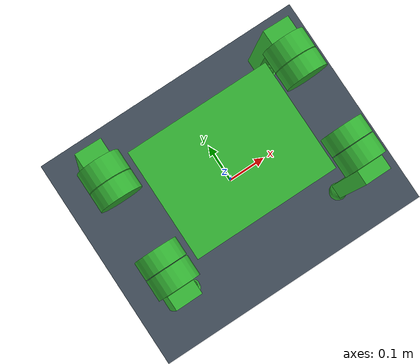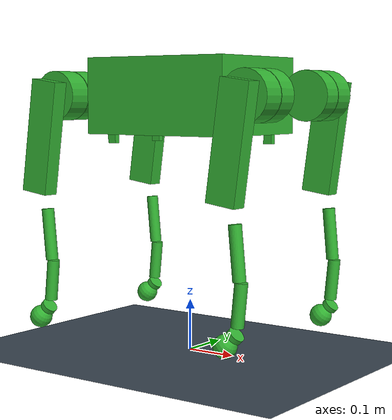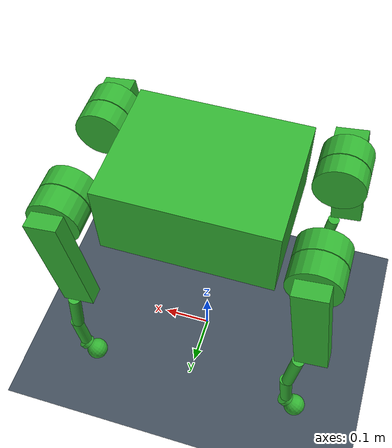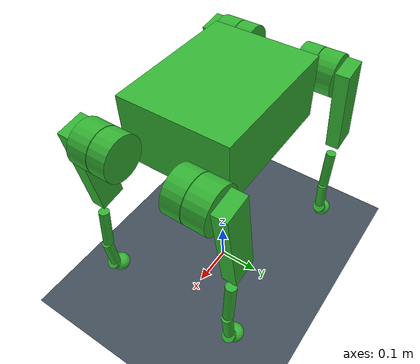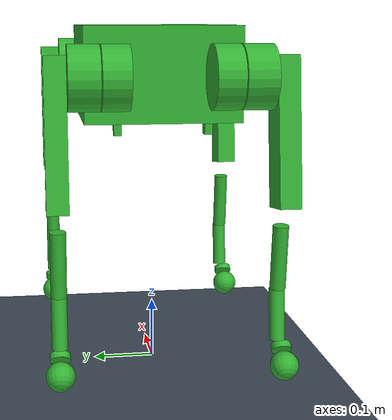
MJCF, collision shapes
<mujoco model="imgo2_amp">
  <!-- Generated by generate_deploy_mjcf.py; training URDF sha256: 9abc6802a05fd59cad41ebbbb47a31208d3a1c5c21dc9d124d7d28d9f4c62a99 -->
  <compiler angle="radian" eulerseq="xyz" autolimits="true" inertiafromgeom="false" />
  <option timestep="0.005" cone="elliptic" impratio="100" gravity="0 0 -9.81" />
  <asset>
    <mesh name="mesh_0" file="../imgo2_urdf/meshes/base.STL" scale="1 1 1" />
    <mesh name="mesh_1" file="../imgo2_urdf/meshes/FL_hip.STL" scale="1 1 1" />
    <mesh name="mesh_2" file="../imgo2_urdf/meshes/L_thigh.STL" scale="1 1 1" />
    <mesh name="mesh_3" file="../imgo2_urdf/meshes/L_shank.STL" scale="1 1 1" />
    <mesh name="mesh_4" file="../imgo2_urdf/meshes/foot.STL" scale="1 1 1" />
    <mesh name="mesh_5" file="../imgo2_urdf/meshes/FR_hip.STL" scale="1 1 1" />
    <mesh name="mesh_6" file="../imgo2_urdf/meshes/R_thigh.STL" scale="1 1 1" />
    <mesh name="mesh_7" file="../imgo2_urdf/meshes/R_shank.STL" scale="1 1 1" />
    <mesh name="mesh_8" file="../imgo2_urdf/meshes/RL_hip.STL" scale="1 1 1" />
    <mesh name="mesh_9" file="../imgo2_urdf/meshes/RR_hip.STL" scale="1 1 1" />
  </asset>
  <worldbody>
    <light pos="0 0 3" dir="0 0 -1" directional="true" />
    <geom name="floor" type="plane" size="0 0 0.1" rgba="0.25 0.3 0.35 1" friction="1 0.005 0.0001" contype="1" conaffinity="2" />
    <body name="base" pos="0 0 0.5">
      <freejoint name="root" />
      <site name="imu" size="0.005" />
      <inertial pos="-0.00002223 -0.00136579 0.00287896" mass="5.53394020" fullinertia="0.03866860 0.10411461 0.12554111 0.00001502 0.00000229 -0.00009602" />
      <geom pos="0 0 0.0" euler="0 0 0" type="mesh" mesh="mesh_0" contype="0" conaffinity="0" group="2" rgba="0.55 0.6 0.65 1" />
      <geom pos="0 0 0" euler="0 0 0" type="box" size="0.1575 0.1215 0.0735" contype="2" conaffinity="1" condim="3" solref="0.005 1" friction="1 0.01 0.01" group="3" rgba="0.2 0.7 0.2 0.3" />
      <geom pos="0.136 0.07 -0.08325" euler="0 0 0" type="box" size="0.009 0.006 0.009" contype="2" conaffinity="1" condim="3" solref="0.005 1" friction="1 0.01 0.01" group="3" rgba="0.2 0.7 0.2 0.3" />
      <geom pos="0.136 -0.07 -0.08325" euler="0 0 0" type="box" size="0.009 0.006 0.009" contype="2" conaffinity="1" condim="3" solref="0.005 1" friction="1 0.01 0.01" group="3" rgba="0.2 0.7 0.2 0.3" />
      <geom pos="-0.136 0.07 -0.08325" euler="0 0 0" type="box" size="0.009 0.006 0.009" contype="2" conaffinity="1" condim="3" solref="0.005 1" friction="1 0.01 0.01" group="3" rgba="0.2 0.7 0.2 0.3" />
      <geom pos="-0.136 -0.07 -0.08325" euler="0 0 0" type="box" size="0.009 0.006 0.009" contype="2" conaffinity="1" condim="3" solref="0.005 1" friction="1 0.01 0.01" group="3" rgba="0.2 0.7 0.2 0.3" />
      <body name="FL_HIP" pos="0.1575 0.067 0.00025" euler="0 0 0">
        <joint name="FL_hip_joint" type="hinge" axis="1 0 0" range="-0.523 0.523" damping="1" armature="0.1" />
        <inertial pos="0.05776150 0.01631658 0.00001927" mass="0.66982842" fullinertia="0.00047165 0.00094023 0.00063679 -0.00002152 -0.00000604 0.00000025" />
        <geom type="mesh" mesh="mesh_1" contype="0" conaffinity="0" group="2" rgba="0.55 0.6 0.65 1" />
        <geom pos="0.063 0.013 0.0" euler="1.5707963267948966 0.0 0.0" type="cylinder" size="0.048 0.0205" contype="2" conaffinity="1" condim="3" solref="0.005 1" friction="1 0.01 0.01" group="3" rgba="0.2 0.7 0.2 0.3" />
        <body name="FL_THIGH" pos="0.063 0.0346 0" euler="0 0 0">
          <joint name="FL_thigh_joint" type="hinge" axis="0 1 0" range="-0.9 2.87" damping="1" armature="0.1" />
          <inertial pos="-0.00429543 0.04392351 -0.03236426" mass="0.96995719" fullinertia="0.00506421 0.00527087 0.00088197 0.00008162 -0.00034748 0.00062882" />
          <geom type="mesh" mesh="mesh_2" contype="0" conaffinity="0" group="2" rgba="0.55 0.6 0.65 1" />
          <geom pos="0.0 0.0235 0.0" euler="1.5707963267948966 0.0 0.0" type="cylinder" size="0.048 0.023" contype="2" conaffinity="1" condim="3" solref="0.005 1" friction="1 0.01 0.01" group="3" rgba="0.2 0.7 0.2 0.3" />
          <geom pos="-0.012 0.0637 -0.08" euler="0.0 0.137 0.0" type="box" size="0.03 0.016 0.11" contype="2" conaffinity="1" condim="3" solref="0.005 1" friction="1 0.01 0.01" group="3" rgba="0.2 0.7 0.2 0.3" />
          <body name="FL_SHANK" pos="0 0.0557 -0.22" euler="0 0 0">
            <joint name="FL_shank_joint" type="hinge" axis="0 1 0" range="-3.0 -0.733" damping="1" armature="0.1" />
            <inertial pos="0.00291507 0.00773582 -0.08768836" mass="0.09561741" fullinertia="0.00054414 0.00055144 0.00001064 0.00000025 0.00000058 0.00000263" />
            <geom type="mesh" mesh="mesh_3" contype="0" conaffinity="0" group="2" rgba="0.55 0.6 0.65 1" />
            <geom pos="0.0 0.008 -0.05" euler="0.0 -0.1 0.0" type="cylinder" size="0.012 0.05" contype="2" conaffinity="1" condim="3" solref="0.005 1" friction="1 0.01 0.01" group="3" rgba="0.2 0.7 0.2 0.3" />
            <geom pos="0.005 0.008 -0.14" euler="0.0 0.1 0.0" type="cylinder" size="0.012 0.04" contype="2" conaffinity="1" condim="3" solref="0.005 1" friction="1 0.01 0.01" group="3" rgba="0.2 0.7 0.2 0.3" />
            <body name="FL_FOOT" pos="0.0 0.00455 -0.206" euler="0.0 0.777 0.0">
              <inertial pos="-0.00797137 0.00353495 -0.02130484" mass="0.056" fullinertia="9.6e-06 9.6e-06 9.6e-06 0 0 0" />
              <geom type="mesh" mesh="mesh_4" contype="0" conaffinity="0" group="2" rgba="0.55 0.6 0.65 1" />
              <geom pos="-0.008 0.0035 0.01" euler="0.0 0.0 0.0" type="cylinder" size="0.0155 0.005" contype="2" conaffinity="1" condim="3" solref="0.005 1" friction="0.4 0.02 0.01" group="3" rgba="0.2 0.7 0.2 0.3" />
              <geom pos="-0.008 0.0035 -0.02" euler="0.0 0.0 0.0" type="sphere" size="0.022" contype="2" conaffinity="1" condim="3" solref="0.005 1" friction="0.4 0.02 0.01" group="3" rgba="0.2 0.7 0.2 0.3" />
            </body>
          </body>
        </body>
      </body>
      <body name="FR_HIP" pos="0.1575 -0.067 0.00025" euler="0 0 0">
        <joint name="FR_hip_joint" type="hinge" axis="1 0 0" range="-0.523 0.523" damping="1" armature="0.1" />
        <inertial pos="0.05776150 -0.01631658 0.00001927" mass="0.66982842" fullinertia="0.00047165 0.00094023 0.00063679 0.00002152 -0.00000604 -0.00000025" />
        <geom type="mesh" mesh="mesh_5" contype="0" conaffinity="0" group="2" rgba="0.55 0.6 0.65 1" />
        <geom pos="0.063 -0.013 0.0" euler="1.5707963267948966 0.0 0.0" type="cylinder" size="0.048 0.0205" contype="2" conaffinity="1" condim="3" solref="0.005 1" friction="1 0.01 0.01" group="3" rgba="0.2 0.7 0.2 0.3" />
        <body name="FR_THIGH" pos="0.063 -0.0346 0" euler="0 0 0">
          <joint name="FR_thigh_joint" type="hinge" axis="0 1 0" range="-0.9 2.87" damping="1" armature="0.1" />
          <inertial pos="-0.00429543 -0.04392351 -0.03236426" mass="0.96995719" fullinertia="0.00506421 0.00527087 0.00088197 -0.00008162 -0.00034748 -0.00062882" />
          <geom type="mesh" mesh="mesh_6" contype="0" conaffinity="0" group="2" rgba="0.55 0.6 0.65 1" />
          <geom pos="0.0 -0.0235 0.0" euler="1.5707963267948966 0.0 0.0" type="cylinder" size="0.048 0.023" contype="2" conaffinity="1" condim="3" solref="0.005 1" friction="1 0.01 0.01" group="3" rgba="0.2 0.7 0.2 0.3" />
          <geom pos="-0.012 -0.0637 -0.08" euler="0.0 0.137 0.0" type="box" size="0.03 0.016 0.11" contype="2" conaffinity="1" condim="3" solref="0.005 1" friction="1 0.01 0.01" group="3" rgba="0.2 0.7 0.2 0.3" />
          <body name="FR_SHANK" pos="0 -0.0557 -0.22" euler="0 0 0">
            <joint name="FR_shank_joint" type="hinge" axis="0 1 0" range="-3.0 -0.733" damping="1" armature="0.1" />
            <inertial pos="0.00291507 -0.00773582 -0.08768836" mass="0.09561741" fullinertia="0.00054414 0.00055144 0.00001064 -0.00000025 0.00000058 -0.00000263" />
            <geom type="mesh" mesh="mesh_7" contype="0" conaffinity="0" group="2" rgba="0.55 0.6 0.65 1" />
            <geom pos="0.0 -0.008 -0.05" euler="0.0 -0.1 0.0" type="cylinder" size="0.012 0.05" contype="2" conaffinity="1" condim="3" solref="0.005 1" friction="1 0.01 0.01" group="3" rgba="0.2 0.7 0.2 0.3" />
            <geom pos="0.005 -0.008 -0.14" euler="0.0 0.1 0.0" type="cylinder" size="0.012 0.04" contype="2" conaffinity="1" condim="3" solref="0.005 1" friction="1 0.01 0.01" group="3" rgba="0.2 0.7 0.2 0.3" />
            <body name="FR_FOOT" pos="0.0 -0.01145 -0.206" euler="0.0 0.777 0.0">
              <inertial pos="-0.00797137 0.00353495 -0.02130484" mass="0.056" fullinertia="9.6e-06 9.6e-06 9.6e-06 0 0 0" />
              <geom type="mesh" mesh="mesh_4" contype="0" conaffinity="0" group="2" rgba="0.55 0.6 0.65 1" />
              <geom pos="-0.008 -0.0035 0.01" euler="0.0 0.0 0.0" type="cylinder" size="0.0155 0.005" contype="2" conaffinity="1" condim="3" solref="0.005 1" friction="0.4 0.02 0.01" group="3" rgba="0.2 0.7 0.2 0.3" />
              <geom pos="-0.008 -0.0035 -0.02" euler="0.0 0.0 0.0" type="sphere" size="0.022" contype="2" conaffinity="1" condim="3" solref="0.005 1" friction="0.4 0.02 0.01" group="3" rgba="0.2 0.7 0.2 0.3" />
            </body>
          </body>
        </body>
      </body>
      <body name="RL_HIP" pos="-0.1575 0.067 0.00025" euler="0 0 0">
        <joint name="RL_hip_joint" type="hinge" axis="1 0 0" range="-0.523 0.523" damping="1" armature="0.1" />
        <inertial pos="-0.05776150 0.01631658 0.00001927" mass="0.66982842" fullinertia="0.00047165 0.00094023 0.00063679 0.00002152 0.00000604 0.00000025" />
        <geom type="mesh" mesh="mesh_8" contype="0" conaffinity="0" group="2" rgba="0.55 0.6 0.65 1" />
        <geom pos="-0.063 0.013 0.0" euler="1.5707963267948966 0.0 0.0" type="cylinder" size="0.048 0.0205" contype="2" conaffinity="1" condim="3" solref="0.005 1" friction="1 0.01 0.01" group="3" rgba="0.2 0.7 0.2 0.3" />
        <body name="RL_THIGH" pos="-0.063 0.0346 0" euler="0 0 0">
          <joint name="RL_thigh_joint" type="hinge" axis="0 1 0" range="-0.9 2.87" damping="1" armature="0.1" />
          <inertial pos="0.00429543 0.04392351 -0.03236426" mass="0.96995719" fullinertia="0.00506421 0.00527087 0.00088197 0.00008162 -0.00034748 0.00062882" />
          <geom type="mesh" mesh="mesh_2" contype="0" conaffinity="0" group="2" rgba="0.55 0.6 0.65 1" />
          <geom pos="0.0 0.0235 0.0" euler="1.5707963267948966 0.0 0.0" type="cylinder" size="0.048 0.023" contype="2" conaffinity="1" condim="3" solref="0.005 1" friction="1 0.01 0.01" group="3" rgba="0.2 0.7 0.2 0.3" />
          <geom pos="-0.012 0.0637 -0.08" euler="0.0 0.137 0.0" type="box" size="0.03 0.016 0.11" contype="2" conaffinity="1" condim="3" solref="0.005 1" friction="1 0.01 0.01" group="3" rgba="0.2 0.7 0.2 0.3" />
          <body name="RL_SHANK" pos="0 0.0557 -0.22" euler="0 0 0">
            <joint name="RL_shank_joint" type="hinge" axis="0 1 0" range="-3.0 -0.733" damping="1" armature="0.1" />
            <inertial pos="0.00291507 0.00773582 -0.08768836" mass="0.09561741" fullinertia="0.00054414 0.00055144 0.00001064 0.00000025 0.00000058 0.00000263" />
            <geom type="mesh" mesh="mesh_3" contype="0" conaffinity="0" group="2" rgba="0.55 0.6 0.65 1" />
            <geom pos="0.0 0.008 -0.05" euler="0.0 -0.1 0.0" type="cylinder" size="0.012 0.05" contype="2" conaffinity="1" condim="3" solref="0.005 1" friction="1 0.01 0.01" group="3" rgba="0.2 0.7 0.2 0.3" />
            <geom pos="0.005 0.008 -0.14" euler="0.0 0.1 0.0" type="cylinder" size="0.012 0.04" contype="2" conaffinity="1" condim="3" solref="0.005 1" friction="1 0.01 0.01" group="3" rgba="0.2 0.7 0.2 0.3" />
            <body name="RL_FOOT" pos="0.0 0.00455 -0.206" euler="0.0 0.777 0.0">
              <inertial pos="-0.00797137 0.00353495 -0.02130484" mass="0.056" fullinertia="9.6e-06 9.6e-06 9.6e-06 0 0 0" />
              <geom type="mesh" mesh="mesh_4" contype="0" conaffinity="0" group="2" rgba="0.55 0.6 0.65 1" />
              <geom pos="-0.008 0.0035 0.01" euler="0.0 0.0 0.0" type="cylinder" size="0.0155 0.005" contype="2" conaffinity="1" condim="3" solref="0.005 1" friction="0.4 0.02 0.01" group="3" rgba="0.2 0.7 0.2 0.3" />
              <geom pos="-0.008 0.0035 -0.02" euler="0.0 0.0 0.0" type="sphere" size="0.022" contype="2" conaffinity="1" condim="3" solref="0.005 1" friction="0.4 0.02 0.01" group="3" rgba="0.2 0.7 0.2 0.3" />
            </body>
          </body>
        </body>
      </body>
      <body name="RR_HIP" pos="-0.1575 -0.067 0.00025" euler="0 0 0">
        <joint name="RR_hip_joint" type="hinge" axis="1 0 0" range="-0.523 0.523" damping="1" armature="0.1" />
        <inertial pos="-0.05776150 -0.01631658 0.00001927" mass="0.66982842" fullinertia="0.00047165 0.00094023 0.00063679 -0.00002152 0.00000604 -0.00000025" />
        <geom type="mesh" mesh="mesh_9" contype="0" conaffinity="0" group="2" rgba="0.55 0.6 0.65 1" />
        <geom pos="-0.063 -0.013 0.0" euler="1.5707963267948966 0.0 0.0" type="cylinder" size="0.048 0.0205" contype="2" conaffinity="1" condim="3" solref="0.005 1" friction="1 0.01 0.01" group="3" rgba="0.2 0.7 0.2 0.3" />
        <body name="RR_THIGH" pos="-0.063 -0.0346 0" euler="0 0 0">
          <joint name="RR_thigh_joint" type="hinge" axis="0 1 0" range="-0.9 2.87" damping="1" armature="0.1" />
          <inertial pos="0.00429543 -0.04392351 -0.03236426" mass="0.96995719" fullinertia="0.00506421 0.00527087 0.00088197 -0.00008162 -0.00034748 -0.00062882" />
          <geom type="mesh" mesh="mesh_6" contype="0" conaffinity="0" group="2" rgba="0.55 0.6 0.65 1" />
          <geom pos="0.0 -0.0235 0.0" euler="1.5707963267948966 0.0 0.0" type="cylinder" size="0.048 0.023" contype="2" conaffinity="1" condim="3" solref="0.005 1" friction="1 0.01 0.01" group="3" rgba="0.2 0.7 0.2 0.3" />
          <geom pos="-0.012 -0.0637 -0.08" euler="0.0 0.137 0.0" type="box" size="0.03 0.016 0.11" contype="2" conaffinity="1" condim="3" solref="0.005 1" friction="1 0.01 0.01" group="3" rgba="0.2 0.7 0.2 0.3" />
          <body name="RR_SHANK" pos="0 -0.0557 -0.22" euler="0 0 0">
            <joint name="RR_shank_joint" type="hinge" axis="0 1 0" range="-3.0 -0.733" damping="1" armature="0.1" />
            <inertial pos="0.00291507 -0.00773582 -0.08768836" mass="0.09561741" fullinertia="0.00054414 0.00055144 0.00001064 -0.00000025 0.00000058 -0.00000263" />
            <geom type="mesh" mesh="mesh_7" contype="0" conaffinity="0" group="2" rgba="0.55 0.6 0.65 1" />
            <geom pos="0.0 -0.008 -0.05" euler="0.0 -0.1 0.0" type="cylinder" size="0.012 0.05" contype="2" conaffinity="1" condim="3" solref="0.005 1" friction="1 0.01 0.01" group="3" rgba="0.2 0.7 0.2 0.3" />
            <geom pos="0.005 -0.008 -0.14" euler="0.0 0.1 0.0" type="cylinder" size="0.012 0.04" contype="2" conaffinity="1" condim="3" solref="0.005 1" friction="1 0.01 0.01" group="3" rgba="0.2 0.7 0.2 0.3" />
            <body name="RR_FOOT" pos="0.0 -0.01145 -0.206" euler="0.0 0.777 0.0">
              <inertial pos="-0.00797137 0.00353495 -0.02130484" mass="0.056" fullinertia="9.6e-06 9.6e-06 9.6e-06 0 0 0" />
              <geom type="mesh" mesh="mesh_4" contype="0" conaffinity="0" group="2" rgba="0.55 0.6 0.65 1" />
              <geom pos="-0.008 -0.0035 0.01" euler="0.0 0.0 0.0" type="cylinder" size="0.0155 0.005" contype="2" conaffinity="1" condim="3" solref="0.005 1" friction="0.4 0.02 0.01" group="3" rgba="0.2 0.7 0.2 0.3" />
              <geom pos="-0.008 -0.0035 -0.02" euler="0.0 0.0 0.0" type="sphere" size="0.022" contype="2" conaffinity="1" condim="3" solref="0.005 1" friction="0.4 0.02 0.01" group="3" rgba="0.2 0.7 0.2 0.3" />
            </body>
          </body>
        </body>
      </body>
    </body>
  </worldbody>
  <actuator>
    <motor name="FL_hip_joint_motor" joint="FL_hip_joint" ctrlrange="-23.7 23.7" gear="1" />
    <motor name="FL_thigh_joint_motor" joint="FL_thigh_joint" ctrlrange="-23.7 23.7" gear="1" />
    <motor name="FL_shank_joint_motor" joint="FL_shank_joint" ctrlrange="-23.7 23.7" gear="1" />
    <motor name="FR_hip_joint_motor" joint="FR_hip_joint" ctrlrange="-23.7 23.7" gear="1" />
    <motor name="FR_thigh_joint_motor" joint="FR_thigh_joint" ctrlrange="-23.7 23.7" gear="1" />
    <motor name="FR_shank_joint_motor" joint="FR_shank_joint" ctrlrange="-23.7 23.7" gear="1" />
    <motor name="RL_hip_joint_motor" joint="RL_hip_joint" ctrlrange="-23.7 23.7" gear="1" />
    <motor name="RL_thigh_joint_motor" joint="RL_thigh_joint" ctrlrange="-23.7 23.7" gear="1" />
    <motor name="RL_shank_joint_motor" joint="RL_shank_joint" ctrlrange="-23.7 23.7" gear="1" />
    <motor name="RR_hip_joint_motor" joint="RR_hip_joint" ctrlrange="-23.7 23.7" gear="1" />
    <motor name="RR_thigh_joint_motor" joint="RR_thigh_joint" ctrlrange="-23.7 23.7" gear="1" />
    <motor name="RR_shank_joint_motor" joint="RR_shank_joint" ctrlrange="-23.7 23.7" gear="1" />
  </actuator>
  <sensor>
    <jointpos name="FL_hip_joint_jointpos" joint="FL_hip_joint" />
    <jointpos name="FL_thigh_joint_jointpos" joint="FL_thigh_joint" />
    <jointpos name="FL_shank_joint_jointpos" joint="FL_shank_joint" />
    <jointpos name="FR_hip_joint_jointpos" joint="FR_hip_joint" />
    <jointpos name="FR_thigh_joint_jointpos" joint="FR_thigh_joint" />
    <jointpos name="FR_shank_joint_jointpos" joint="FR_shank_joint" />
    <jointpos name="RL_hip_joint_jointpos" joint="RL_hip_joint" />
    <jointpos name="RL_thigh_joint_jointpos" joint="RL_thigh_joint" />
    <jointpos name="RL_shank_joint_jointpos" joint="RL_shank_joint" />
    <jointpos name="RR_hip_joint_jointpos" joint="RR_hip_joint" />
    <jointpos name="RR_thigh_joint_jointpos" joint="RR_thigh_joint" />
    <jointpos name="RR_shank_joint_jointpos" joint="RR_shank_joint" />
    <jointvel name="FL_hip_joint_jointvel" joint="FL_hip_joint" />
    <jointvel name="FL_thigh_joint_jointvel" joint="FL_thigh_joint" />
    <jointvel name="FL_shank_joint_jointvel" joint="FL_shank_joint" />
    <jointvel name="FR_hip_joint_jointvel" joint="FR_hip_joint" />
    <jointvel name="FR_thigh_joint_jointvel" joint="FR_thigh_joint" />
    <jointvel name="FR_shank_joint_jointvel" joint="FR_shank_joint" />
    <jointvel name="RL_hip_joint_jointvel" joint="RL_hip_joint" />
    <jointvel name="RL_thigh_joint_jointvel" joint="RL_thigh_joint" />
    <jointvel name="RL_shank_joint_jointvel" joint="RL_shank_joint" />
    <jointvel name="RR_hip_joint_jointvel" joint="RR_hip_joint" />
    <jointvel name="RR_thigh_joint_jointvel" joint="RR_thigh_joint" />
    <jointvel name="RR_shank_joint_jointvel" joint="RR_shank_joint" />
    <jointactuatorfrc name="FL_hip_joint_jointactuatorfrc" joint="FL_hip_joint" />
    <jointactuatorfrc name="FL_thigh_joint_jointactuatorfrc" joint="FL_thigh_joint" />
    <jointactuatorfrc name="FL_shank_joint_jointactuatorfrc" joint="FL_shank_joint" />
    <jointactuatorfrc name="FR_hip_joint_jointactuatorfrc" joint="FR_hip_joint" />
    <jointactuatorfrc name="FR_thigh_joint_jointactuatorfrc" joint="FR_thigh_joint" />
    <jointactuatorfrc name="FR_shank_joint_jointactuatorfrc" joint="FR_shank_joint" />
    <jointactuatorfrc name="RL_hip_joint_jointactuatorfrc" joint="RL_hip_joint" />
    <jointactuatorfrc name="RL_thigh_joint_jointactuatorfrc" joint="RL_thigh_joint" />
    <jointactuatorfrc name="RL_shank_joint_jointactuatorfrc" joint="RL_shank_joint" />
    <jointactuatorfrc name="RR_hip_joint_jointactuatorfrc" joint="RR_hip_joint" />
    <jointactuatorfrc name="RR_thigh_joint_jointactuatorfrc" joint="RR_thigh_joint" />
    <jointactuatorfrc name="RR_shank_joint_jointactuatorfrc" joint="RR_shank_joint" />
    <framequat name="orientation" objtype="body" objname="base" />
    <gyro name="angular_velocity" site="imu" />
  </sensor>
  <keyframe>
    <key name="stand" qpos="0 0 0.35 1 0 0 0 0 0.87 -1.82 0 0.87 -1.82 0 0.87 -1.82 0 0.87 -1.82" />
  </keyframe>
</mujoco>
